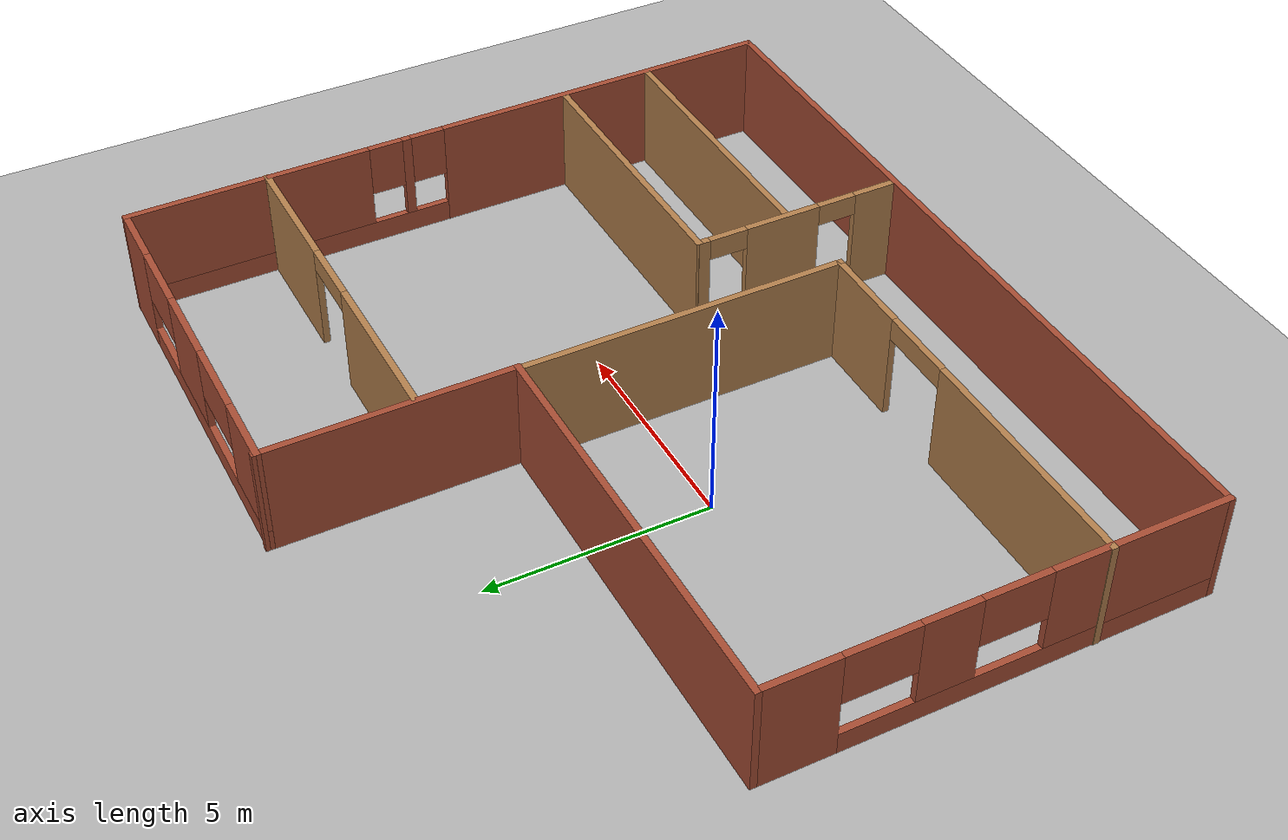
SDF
<sdf version="1.7">
 <world name="default">
  <physics name="1ms" type="ode">
   <max_step_size>0.003</max_step_size>
   <real_time_factor>1.0</real_time_factor>
   <real_time_update_rate>1000</real_time_update_rate>
  </physics>
  <plugin name="gz::sim::systems::Physics" filename="ignition-gazebo-physics-system"/>
  <plugin name="gz::sim::systems::UserCommands" filename="ignition-gazebo-user-commands-system"/>
  <plugin name="gz::sim::systems::SceneBroadcaster" filename="ignition-gazebo-scene-broadcaster-system"/>
  <plugin name="gz::sim::systems::Contact" filename="ignition-gazebo-contact-system"/>
  <light name="sun" type="directional">
   <pose>0 0 10 0 -0.5 0</pose>
   <diffuse>1 1 1 1</diffuse>
   <specular>0.1 0.1 0.1 1</specular>
   <attenuation>
    <range>1000</range>
    <constant>0.9</constant>
    <linear>0.01</linear>
    <quadratic>0.001</quadratic>
   </attenuation>
   <direction>-0.5 -0.5 -0.9</direction>
  </light>
  <gravity>0 0 -9.8</gravity>
  <magnetic_field>6e-06 2.3e-05 -4.2e-05</magnetic_field>
  <atmosphere type="adiabatic"/>
  <scene><ambient>0.4 0.4 0.4 1</ambient><background>0.3 0.7 0.9 1</background><shadows>0</shadows></scene>
  <model name="ground_plane">
   <static>true</static>
   <link name="link">
    <collision name="collision">
     <geometry><plane><normal>0 0 1</normal><size>100 100</size></plane></geometry>
    </collision>
    <visual name="visual">
     <geometry><plane><normal>0 0 1</normal><size>100 100</size></plane></geometry>
     <material>
      <ambient>0.3 0.3 0.3 1</ambient>
      <diffuse>0.7 0.7 0.7 1</diffuse>
      <specular>0.01 0.01 0.01 1</specular>
     </material>
     <plugin name="__default__" filename="__default__"/>
    </visual>
   </link>
   <plugin name="__default__" filename="__default__"/>
  </model>
  <model name="flat_2">
   <pose>2.55406 0.454253 0 0 0 -0</pose>
   <link name="Wall_11">
    <pose>-8.9 -2.76879 0 0 0 -1.5708</pose>
    <visual name="Wall_11_Visual_0">
     <pose>-4.18602 0 1.25 0 -0 0</pose>
     <geometry><box><size>1.62796 0.15 2.5</size></box></geometry>
     <material>
      <script><uri>file://media/materials/scripts/gazebo.material</uri><name>Gazebo/Bricks</name></script>
      <ambient>1 1 1 1</ambient>
     </material>
     <meta><layer>0</layer></meta>
    </visual>
    <collision name="Wall_11_Collision_0">
     <geometry><box><size>1.62796 0.15 2.5</size></box></geometry>
     <pose>-4.18602 0 1.25 0 -0 0</pose>
    </collision>
    <visual name="Wall_11_Visual_1">
     <pose>0.813982 0 0.25 0 -0 0</pose>
     <geometry><box><size>8.37204 0.15 0.5</size></box></geometry>
     <material>
      <script><uri>file://media/materials/scripts/gazebo.material</uri><name>Gazebo/Bricks</name></script>
      <ambient>1 1 1 1</ambient>
     </material>
     <meta><layer>0</layer></meta>
    </visual>
    <collision name="Wall_11_Collision_1">
     <geometry><box><size>8.37204 0.15 0.5</size></box></geometry>
     <pose>0.813982 0 0.25 0 -0 0</pose>
    </collision>
    <visual name="Wall_11_Visual_2">
     <pose>-1.1464 0 1.5 0 -0 0</pose>
     <geometry><box><size>1.26117 0.15 2</size></box></geometry>
     <material>
      <script><uri>file://media/materials/scripts/gazebo.material</uri><name>Gazebo/Bricks</name></script>
      <ambient>1 1 1 1</ambient>
     </material>
     <meta><layer>0</layer></meta>
    </visual>
    <collision name="Wall_11_Collision_2">
     <geometry><box><size>1.26117 0.15 2</size></box></geometry>
     <pose>-1.1464 0 1.5 0 -0 0</pose>
    </collision>
    <visual name="Wall_11_Visual_3">
     <pose>2.98891 0 1.5 0 -0 0</pose>
     <geometry><box><size>4.02218 0.15 2</size></box></geometry>
     <material>
      <script><uri>file://media/materials/scripts/gazebo.material</uri><name>Gazebo/Bricks</name></script>
      <ambient>1 1 1 1</ambient>
     </material>
     <meta><layer>0</layer></meta>
    </visual>
    <collision name="Wall_11_Collision_3">
     <geometry><box><size>4.02218 0.15 2</size></box></geometry>
     <pose>2.98891 0 1.5 0 -0 0</pose>
    </collision>
    <visual name="Wall_11_Visual_4">
     <pose>-2.57451 0 1.9 0 -0 0</pose>
     <geometry><box><size>1.59506 0.15 1.2</size></box></geometry>
     <material>
      <script><uri>file://media/materials/scripts/gazebo.material</uri><name>Gazebo/Bricks</name></script>
      <ambient>1 1 1 1</ambient>
     </material>
     <meta><layer>0</layer></meta>
    </visual>
    <collision name="Wall_11_Collision_4">
     <geometry><box><size>1.59506 0.15 1.2</size></box></geometry>
     <pose>-2.57451 0 1.9 0 -0 0</pose>
    </collision>
    <visual name="Wall_11_Visual_5">
     <pose>0.231004 0 1.9 0 -0 0</pose>
     <geometry><box><size>1.49363 0.15 1.2</size></box></geometry>
     <material>
      <script><uri>file://media/materials/scripts/gazebo.material</uri><name>Gazebo/Bricks</name></script>
      <ambient>1 1 1 1</ambient>
     </material>
     <meta><layer>0</layer></meta>
    </visual>
    <collision name="Wall_11_Collision_5">
     <geometry><box><size>1.49363 0.15 1.2</size></box></geometry>
     <pose>0.231004 0 1.9 0 -0 0</pose>
    </collision>
    <inertial>
     <mass>1</mass>
     <inertia><ixx>1</ixx><ixy>0</ixy><ixz>0</ixz><iyy>1</iyy><iyz>0</iyz><izz>1</izz></inertia>
    </inertial>
   </link>
   <link name="Wall_12">
    <collision name="Wall_12_Collision">
     <geometry><box><size>17.9322 0.15 2.5</size></box></geometry>
     <pose>0 0 1.25 0 -0 0</pose>
    </collision>
    <visual name="Wall_12_Visual">
     <pose>0 0 1.25 0 -0 0</pose>
     <geometry><box><size>17.9322 0.15 2.5</size></box></geometry>
     <material>
      <script><uri>file://media/materials/scripts/gazebo.material</uri><name>Gazebo/Bricks</name></script>
      <ambient>1 1 1 1</ambient>
     </material>
     <meta><layer>0</layer></meta>
    </visual>
    <pose>-0.013284 -7.72256 0 0 0 -0.003235</pose>
    <inertial>
     <mass>1</mass>
     <inertia><ixx>1</ixx><ixy>0</ixy><ixz>0</ixz><iyy>1</iyy><iyz>0</iyz><izz>1</izz></inertia>
    </inertial>
   </link>
   <link name="Wall_14">
    <pose>8.88134 -0.035336 0 0 -0 1.57557</pose>
    <visual name="Wall_14_Visual_0">
     <pose>-3.73823 0 1.25 0 -0 0</pose>
     <geometry><box><size>8.10567 0.15 2.5</size></box></geometry>
     <material>
      <script><uri>file://media/materials/scripts/gazebo.material</uri><name>Gazebo/Bricks</name></script>
      <ambient>1 1 1 1</ambient>
     </material>
     <meta><layer>0</layer></meta>
    </visual>
    <collision name="Wall_14_Collision_0">
     <geometry><box><size>8.10567 0.15 2.5</size></box></geometry>
     <pose>-3.73823 0 1.25 0 -0 0</pose>
    </collision>
    <visual name="Wall_14_Visual_1">
     <pose>4.05283 0 0.25 0 -0 0</pose>
     <geometry><box><size>7.47647 0.15 0.5</size></box></geometry>
     <material>
      <script><uri>file://media/materials/scripts/gazebo.material</uri><name>Gazebo/Bricks</name></script>
      <ambient>1 1 1 1</ambient>
     </material>
     <meta><layer>0</layer></meta>
    </visual>
    <collision name="Wall_14_Collision_1">
     <geometry><box><size>7.47647 0.15 0.5</size></box></geometry>
     <pose>4.05283 0 0.25 0 -0 0</pose>
    </collision>
    <visual name="Wall_14_Visual_2">
     <pose>1.22458 0 1.5 0 -0 0</pose>
     <geometry><box><size>0.219969 0.15 2</size></box></geometry>
     <material>
      <script><uri>file://media/materials/scripts/gazebo.material</uri><name>Gazebo/Bricks</name></script>
      <ambient>1 1 1 1</ambient>
     </material>
     <meta><layer>0</layer></meta>
    </visual>
    <collision name="Wall_14_Collision_2">
     <geometry><box><size>0.219969 0.15 2</size></box></geometry>
     <pose>1.22458 0 1.5 0 -0 0</pose>
    </collision>
    <visual name="Wall_14_Visual_3">
     <pose>4.96282 0 1.5 0 -0 0</pose>
     <geometry><box><size>5.6565 0.15 2</size></box></geometry>
     <material>
      <script><uri>file://media/materials/scripts/gazebo.material</uri><name>Gazebo/Bricks</name></script>
      <ambient>1 1 1 1</ambient>
     </material>
     <meta><layer>0</layer></meta>
    </visual>
    <collision name="Wall_14_Collision_3">
     <geometry><box><size>5.6565 0.15 2</size></box></geometry>
     <pose>4.96282 0 1.5 0 -0 0</pose>
    </collision>
    <visual name="Wall_14_Visual_4">
     <pose>0.7146 0 1.9 0 -0 0</pose>
     <geometry><box><size>0.8 0.15 1.2</size></box></geometry>
     <material>
      <script><uri>file://media/materials/scripts/gazebo.material</uri><name>Gazebo/Bricks</name></script>
      <ambient>1 1 1 1</ambient>
     </material>
     <meta><layer>0</layer></meta>
    </visual>
    <collision name="Wall_14_Collision_4">
     <geometry><box><size>0.8 0.15 1.2</size></box></geometry>
     <pose>0.7146 0 1.9 0 -0 0</pose>
    </collision>
    <visual name="Wall_14_Visual_5">
     <pose>1.73457 0 1.9 0 -0 0</pose>
     <geometry><box><size>0.8 0.15 1.2</size></box></geometry>
     <material>
      <script><uri>file://media/materials/scripts/gazebo.material</uri><name>Gazebo/Bricks</name></script>
      <ambient>1 1 1 1</ambient>
     </material>
     <meta><layer>0</layer></meta>
    </visual>
    <collision name="Wall_14_Collision_5">
     <geometry><box><size>0.8 0.15 1.2</size></box></geometry>
     <pose>1.73457 0 1.9 0 -0 0</pose>
    </collision>
    <inertial>
     <mass>1</mass>
     <inertia><ixx>1</ixx><ixy>0</ixy><ixz>0</ixz><iyy>1</iyy><iyz>0</iyz><izz>1</izz></inertia>
    </inertial>
   </link>
   <link name="Wall_15">
    <pose>4.61447 7.69576 0 0 -0 3.13798</pose>
    <visual name="Wall_15_Visual_0">
     <pose>-3.50303 0 1.25 0 -0 0</pose>
     <geometry><box><size>1.52306 0.15 2.5</size></box></geometry>
     <material>
      <script><uri>file://media/materials/scripts/gazebo.material</uri><name>Gazebo/Bricks</name></script>
      <ambient>1 1 1 1</ambient>
     </material>
     <meta><layer>0</layer></meta>
    </visual>
    <collision name="Wall_15_Collision_0">
     <geometry><box><size>1.52306 0.15 2.5</size></box></geometry>
     <pose>-3.50303 0 1.25 0 -0 0</pose>
    </collision>
    <visual name="Wall_15_Visual_1">
     <pose>0.761529 0 0.25 0 -0 0</pose>
     <geometry><box><size>7.00606 0.15 0.5</size></box></geometry>
     <material>
      <script><uri>file://media/materials/scripts/gazebo.material</uri><name>Gazebo/Bricks</name></script>
      <ambient>1 1 1 1</ambient>
     </material>
     <meta><layer>0</layer></meta>
    </visual>
    <collision name="Wall_15_Collision_1">
     <geometry><box><size>7.00606 0.15 0.5</size></box></geometry>
     <pose>0.761529 0 0.25 0 -0 0</pose>
    </collision>
    <visual name="Wall_15_Visual_2">
     <pose>-0.119116 0 1.5 0 -0 0</pose>
     <geometry><box><size>1.88034 0.15 2</size></box></geometry>
     <material>
      <script><uri>file://media/materials/scripts/gazebo.material</uri><name>Gazebo/Bricks</name></script>
      <ambient>1 1 1 1</ambient>
     </material>
     <meta><layer>0</layer></meta>
    </visual>
    <collision name="Wall_15_Collision_2">
     <geometry><box><size>1.88034 0.15 2</size></box></geometry>
     <pose>-0.119116 0 1.5 0 -0 0</pose>
    </collision>
    <visual name="Wall_15_Visual_3">
     <pose>3.44471 0 1.5 0 -0 0</pose>
     <geometry><box><size>1.6397 0.15 2</size></box></geometry>
     <material>
      <script><uri>file://media/materials/scripts/gazebo.material</uri><name>Gazebo/Bricks</name></script>
      <ambient>1 1 1 1</ambient>
     </material>
     <meta><layer>0</layer></meta>
    </visual>
    <collision name="Wall_15_Collision_3">
     <geometry><box><size>1.6397 0.15 2</size></box></geometry>
     <pose>3.44471 0 1.5 0 -0 0</pose>
    </collision>
    <visual name="Wall_15_Visual_4">
     <pose>-1.90039 0 1.9 0 -0 0</pose>
     <geometry><box><size>1.68222 0.15 1.2</size></box></geometry>
     <material>
      <script><uri>file://media/materials/scripts/gazebo.material</uri><name>Gazebo/Bricks</name></script>
      <ambient>1 1 1 1</ambient>
     </material>
     <meta><layer>0</layer></meta>
    </visual>
    <collision name="Wall_15_Collision_4">
     <geometry><box><size>1.68222 0.15 1.2</size></box></geometry>
     <pose>-1.90039 0 1.9 0 -0 0</pose>
    </collision>
    <visual name="Wall_15_Visual_5">
     <pose>1.72295 0 1.9 0 -0 0</pose>
     <geometry><box><size>1.8038 0.15 1.2</size></box></geometry>
     <material>
      <script><uri>file://media/materials/scripts/gazebo.material</uri><name>Gazebo/Bricks</name></script>
      <ambient>1 1 1 1</ambient>
     </material>
     <meta><layer>0</layer></meta>
    </visual>
    <collision name="Wall_15_Collision_5">
     <geometry><box><size>1.8038 0.15 1.2</size></box></geometry>
     <pose>1.72295 0 1.9 0 -0 0</pose>
    </collision>
    <inertial>
     <mass>1</mass>
     <inertia><ixx>1</ixx><ixy>0</ixy><ixz>0</ixz><iyy>1</iyy><iyz>0</iyz><izz>1</izz></inertia>
    </inertial>
   </link>
   <link name="Wall_16">
    <collision name="Wall_16_Collision">
     <geometry><box><size>5.57069 0.15 2.5</size></box></geometry>
     <pose>0 0 1.25 0 -0 0</pose>
    </collision>
    <visual name="Wall_16_Visual">
     <pose>0 0 1.25 0 -0 0</pose>
     <geometry><box><size>5.57069 0.15 2.5</size></box></geometry>
     <material>
      <script><uri>file://media/materials/scripts/gazebo.material</uri><name>Gazebo/Bricks</name></script>
      <ambient>1 1 1 1</ambient>
     </material>
     <meta><layer>0</layer></meta>
    </visual>
    <pose>0.437258 5.04102 0 0 0 -1.56625</pose>
    <inertial>
     <mass>1</mass>
     <inertia><ixx>1</ixx><ixy>0</ixy><ixz>0</ixz><iyy>1</iyy><iyz>0</iyz><izz>1</izz></inertia>
    </inertial>
   </link>
   <link name="Wall_18">
    <collision name="Wall_18_Collision">
     <geometry><box><size>9.5 0.15 2.5</size></box></geometry>
     <pose>0 0 1.25 0 -0 0</pose>
    </collision>
    <visual name="Wall_18_Visual">
     <pose>0 0 1.25 0 -0 0</pose>
     <geometry><box><size>9.5 0.15 2.5</size></box></geometry>
     <material>
      <script><uri>file://media/materials/scripts/gazebo.material</uri><name>Gazebo/Bricks</name></script>
      <ambient>1 1 1 1</ambient>
     </material>
     <meta><layer>0</layer></meta>
    </visual>
    <pose>-4.22543 2.29025 0 0 -0 3.14159</pose>
    <inertial>
     <mass>1</mass>
     <inertia><ixx>1</ixx><ixy>0</ixy><ixz>0</ixz><iyy>1</iyy><iyz>0</iyz><izz>1</izz></inertia>
    </inertial>
   </link>
   <link name="Wall_20">
    <pose>-4.26109 -5.07012 0 0 0 -0.0086</pose>
    <visual name="Wall_20_Visual_0">
     <pose>-1.95555 0 1.25 0 -0 0</pose>
     <geometry><box><size>5.55291 0.15 2.5</size></box></geometry>
     <material>
      <script><uri>file://media/materials/scripts/gazebo.material</uri><name>Gazebo/Wood</name></script>
      <ambient>1 1 1 1</ambient>
     </material>
     <meta><layer>0</layer></meta>
    </visual>
    <collision name="Wall_20_Collision_0">
     <geometry><box><size>5.55291 0.15 2.5</size></box></geometry>
     <pose>-1.95555 0 1.25 0 -0 0</pose>
    </collision>
    <visual name="Wall_20_Visual_1">
     <pose>3.64933 0 1.25 0 -0 0</pose>
     <geometry><box><size>2.16536 0.15 2.5</size></box></geometry>
     <material>
      <script><uri>file://media/materials/scripts/gazebo.material</uri><name>Gazebo/Wood</name></script>
      <ambient>1 1 1 1</ambient>
     </material>
     <meta><layer>0</layer></meta>
    </visual>
    <collision name="Wall_20_Collision_1">
     <geometry><box><size>2.16536 0.15 2.5</size></box></geometry>
     <pose>3.64933 0 1.25 0 -0 0</pose>
    </collision>
    <visual name="Wall_20_Visual_2">
     <pose>1.69377 0 2.25 0 -0 0</pose>
     <geometry><box><size>1.74575 0.15 0.5</size></box></geometry>
     <material>
      <script><uri>file://media/materials/scripts/gazebo.material</uri><name>Gazebo/Wood</name></script>
      <ambient>1 1 1 1</ambient>
     </material>
     <meta><layer>0</layer></meta>
    </visual>
    <collision name="Wall_20_Collision_2">
     <geometry><box><size>1.74575 0.15 0.5</size></box></geometry>
     <pose>1.69377 0 2.25 0 -0 0</pose>
    </collision>
    <inertial>
     <mass>1</mass>
     <inertia><ixx>1</ixx><ixy>0</ixy><ixz>0</ixz><iyy>1</iyy><iyz>0</iyz><izz>1</izz></inertia>
    </inertial>
   </link>
   <link name="Wall_22">
    <collision name="Wall_22_Collision">
     <geometry><box><size>7.44813 0.15 2.5</size></box></geometry>
     <pose>0 0 1.25 0 -0 0</pose>
    </collision>
    <visual name="Wall_22_Visual">
     <pose>0 0 1.25 0 -0 0</pose>
     <geometry><box><size>7.44813 0.15 2.5</size></box></geometry>
     <material>
      <script><uri>file://media/materials/scripts/gazebo.material</uri><name>Gazebo/Wood</name></script>
      <ambient>1 1 1 1</ambient>
     </material>
     <meta><layer>0</layer></meta>
    </visual>
    <pose>0.422896 -1.46114 0 0 -0 1.57444</pose>
    <inertial>
     <mass>1</mass>
     <inertia><ixx>1</ixx><ixy>0</ixy><ixz>0</ixz><iyy>1</iyy><iyz>0</iyz><izz>1</izz></inertia>
    </inertial>
   </link>
   <link name="Wall_24">
    <pose>4.69615 4.4707 0 0 -0 0</pose>
    <visual name="Wall_24_Visual_0">
     <pose>-2.34213 0 1.25 0 -0 0</pose>
     <geometry><box><size>3.81574 0.15 2.5</size></box></geometry>
     <material>
      <script><uri>file://media/materials/scripts/gazebo.material</uri><name>Gazebo/Wood</name></script>
      <ambient>1 1 1 1</ambient>
     </material>
     <meta><layer>0</layer></meta>
    </visual>
    <collision name="Wall_24_Collision_0">
     <geometry><box><size>3.81574 0.15 2.5</size></box></geometry>
     <pose>-2.34213 0 1.25 0 -0 0</pose>
    </collision>
    <visual name="Wall_24_Visual_1">
     <pose>2.69246 0 1.25 0 -0 0</pose>
     <geometry><box><size>3.11507 0.15 2.5</size></box></geometry>
     <material>
      <script><uri>file://media/materials/scripts/gazebo.material</uri><name>Gazebo/Wood</name></script>
      <ambient>1 1 1 1</ambient>
     </material>
     <meta><layer>0</layer></meta>
    </visual>
    <collision name="Wall_24_Collision_1">
     <geometry><box><size>3.11507 0.15 2.5</size></box></geometry>
     <pose>2.69246 0 1.25 0 -0 0</pose>
    </collision>
    <visual name="Wall_24_Visual_2">
     <pose>0.350335 0 2.25 0 -0 0</pose>
     <geometry><box><size>1.56919 0.15 0.5</size></box></geometry>
     <material>
      <script><uri>file://media/materials/scripts/gazebo.material</uri><name>Gazebo/Wood</name></script>
      <ambient>1 1 1 1</ambient>
     </material>
     <meta><layer>0</layer></meta>
    </visual>
    <collision name="Wall_24_Collision_2">
     <geometry><box><size>1.56919 0.15 0.5</size></box></geometry>
     <pose>0.350335 0 2.25 0 -0 0</pose>
    </collision>
    <inertial>
     <mass>1</mass>
     <inertia><ixx>1</ixx><ixy>0</ixy><ixz>0</ixz><iyy>1</iyy><iyz>0</iyz><izz>1</izz></inertia>
    </inertial>
   </link>
   <link name="Wall_26">
    <pose>2.37741 -5.28533 0 0 0 -1.5708</pose>
    <visual name="Wall_26_Visual_0">
     <pose>-2.36508 0 1.25 0 -0 0</pose>
     <geometry><box><size>0.26984 0.15 2.5</size></box></geometry>
     <material>
      <script><uri>file://media/materials/scripts/gazebo.material</uri><name>Gazebo/Wood</name></script>
      <ambient>1 1 1 1</ambient>
     </material>
     <meta><layer>0</layer></meta>
    </visual>
    <collision name="Wall_26_Collision_0">
     <geometry><box><size>0.26984 0.15 2.5</size></box></geometry>
     <pose>-2.36508 0 1.25 0 -0 0</pose>
    </collision>
    <visual name="Wall_26_Visual_1">
     <pose>-0.431785 0 1.25 0 -0 0</pose>
     <geometry><box><size>1.79331 0.15 2.5</size></box></geometry>
     <material>
      <script><uri>file://media/materials/scripts/gazebo.material</uri><name>Gazebo/Wood</name></script>
      <ambient>1 1 1 1</ambient>
     </material>
     <meta><layer>0</layer></meta>
    </visual>
    <collision name="Wall_26_Collision_1">
     <geometry><box><size>1.79331 0.15 2.5</size></box></geometry>
     <pose>-0.431785 0 1.25 0 -0 0</pose>
    </collision>
    <visual name="Wall_26_Visual_2">
     <pose>1.94001 0 1.25 0 -0 0</pose>
     <geometry><box><size>1.11999 0.15 2.5</size></box></geometry>
     <material>
      <script><uri>file://media/materials/scripts/gazebo.material</uri><name>Gazebo/Wood</name></script>
      <ambient>1 1 1 1</ambient>
     </material>
     <meta><layer>0</layer></meta>
    </visual>
    <collision name="Wall_26_Collision_2">
     <geometry><box><size>1.11999 0.15 2.5</size></box></geometry>
     <pose>1.94001 0 1.25 0 -0 0</pose>
    </collision>
    <visual name="Wall_26_Visual_3">
     <pose>-1.7793 0 2.25 0 -0 0</pose>
     <geometry><box><size>0.901719 0.15 0.5</size></box></geometry>
     <material>
      <script><uri>file://media/materials/scripts/gazebo.material</uri><name>Gazebo/Wood</name></script>
      <ambient>1 1 1 1</ambient>
     </material>
     <meta><layer>0</layer></meta>
    </visual>
    <collision name="Wall_26_Collision_3">
     <geometry><box><size>0.901719 0.15 0.5</size></box></geometry>
     <pose>-1.7793 0 2.25 0 -0 0</pose>
    </collision>
    <visual name="Wall_26_Visual_4">
     <pose>0.922442 0 2.25 0 -0 0</pose>
     <geometry><box><size>0.915144 0.15 0.5</size></box></geometry>
     <material>
      <script><uri>file://media/materials/scripts/gazebo.material</uri><name>Gazebo/Wood</name></script>
      <ambient>1 1 1 1</ambient>
     </material>
     <meta><layer>0</layer></meta>
    </visual>
    <collision name="Wall_26_Collision_4">
     <geometry><box><size>0.915144 0.15 0.5</size></box></geometry>
     <pose>0.922442 0 2.25 0 -0 0</pose>
    </collision>
    <inertial>
     <mass>1</mass>
     <inertia><ixx>1</ixx><ixy>0</ixy><ixz>0</ixz><iyy>1</iyy><iyz>0</iyz><izz>1</izz></inertia>
    </inertial>
   </link>
   <link name="Wall_28">
    <collision name="Wall_28_Collision">
     <geometry><box><size>6.5 0.15 2.5</size></box></geometry>
     <pose>0 0 1.25 0 -0 0</pose>
    </collision>
    <visual name="Wall_28_Visual">
     <pose>0 0 1.25 0 -0 0</pose>
     <geometry><box><size>6.5 0.15 2.5</size></box></geometry>
     <material>
      <script><uri>file://media/materials/scripts/gazebo.material</uri><name>Gazebo/Wood</name></script>
      <ambient>1 1 1 1</ambient>
     </material>
     <meta><layer>0</layer></meta>
    </visual>
    <pose>5.56371 -2.80486 0 0 -0 0</pose>
    <inertial>
     <mass>1</mass>
     <inertia><ixx>1</ixx><ixy>0</ixy><ixz>0</ixz><iyy>1</iyy><iyz>0</iyz><izz>1</izz></inertia>
    </inertial>
   </link>
   <link name="Wall_30">
    <collision name="Wall_30_Collision">
     <geometry><box><size>6.5 0.15 2.5</size></box></geometry>
     <pose>0 0 1.25 0 -0 0</pose>
    </collision>
    <visual name="Wall_30_Visual">
     <pose>0 0 1.25 0 -0 0</pose>
     <geometry><box><size>6.5 0.15 2.5</size></box></geometry>
     <material>
      <script><uri>file://media/materials/scripts/gazebo.material</uri><name>Gazebo/Wood</name></script>
      <ambient>1 1 1 1</ambient>
     </material>
     <meta><layer>0</layer></meta>
    </visual>
    <pose>5.61814 -4.97174 0 0 -0 0</pose>
    <inertial>
     <mass>1</mass>
     <inertia><ixx>1</ixx><ixy>0</ixy><ixz>0</ixz><iyy>1</iyy><iyz>0</iyz><izz>1</izz></inertia>
    </inertial>
   </link>
   <static>true</static>
  </model>
  <model name="Bookshelf">
   <static>true</static>
   <link name="link">
    <inertial>
     <mass>1</mass>
     <inertia><ixx>1</ixx><ixy>0</ixy><ixz>0</ixz><iyy>1</iyy><iyz>0</iyz><izz>1</izz></inertia>
    </inertial>
    <collision name="back">
     <pose>0 0.005 0.6 0 0 0</pose>
     <geometry><box><size>0.9 0.01 1.2</size></box></geometry>
    </collision>
    <visual name="visual1">
     <pose>0 0.005 0.6 0 0 0</pose>
     <geometry><box><size>0.9 0.01 1.2</size></box></geometry>
     <material>
      <diffuse>1 1 1 1</diffuse>
      <script><uri>file://media/materials/scripts/gazebo.material</uri><name>Gazebo/Wood</name></script>
      <pbr>
       <metal>
        <albedo_map>https://fuel.gazebosim.org/1.0/openrobotics/models/bookshelf/4/files/bookshelf_diffuse.jpg</albedo_map>
       </metal>
      </pbr>
     </material>
    </visual>
    <collision name="left_side">
     <pose>0.45 -0.195 0.6 0 0 0</pose>
     <geometry><box><size>0.02 0.4 1.2</size></box></geometry>
    </collision>
    <visual name="visual2">
     <pose>0.45 -0.195 0.6 0 0 0</pose>
     <geometry><box><size>0.02 0.4 1.2</size></box></geometry>
     <material>
      <diffuse>1 1 1 1</diffuse>
      <script><uri>file://media/materials/scripts/gazebo.material</uri><name>Gazebo/Wood</name></script>
      <pbr>
       <metal>
        <albedo_map>https://fuel.gazebosim.org/1.0/openrobotics/models/bookshelf/4/files/bookshelf_diffuse.jpg</albedo_map>
       </metal>
      </pbr>
     </material>
    </visual>
    <collision name="right_side">
     <pose>-0.45 -0.195 0.6 0 0 0</pose>
     <geometry><box><size>0.02 0.4 1.2</size></box></geometry>
    </collision>
    <visual name="visual3">
     <pose>-0.45 -0.195 0.6 0 0 0</pose>
     <geometry><box><size>0.02 0.4 1.2</size></box></geometry>
     <material>
      <diffuse>1 1 1 1</diffuse>
      <script><uri>file://media/materials/scripts/gazebo.material</uri><name>Gazebo/Wood</name></script>
      <pbr>
       <metal>
        <albedo_map>https://fuel.gazebosim.org/1.0/openrobotics/models/bookshelf/4/files/bookshelf_diffuse.jpg</albedo_map>
       </metal>
      </pbr>
     </material>
    </visual>
    <collision name="bottom">
     <pose>0 -0.195 0.03 0 0 0</pose>
     <geometry><box><size>0.88 0.4 0.06</size></box></geometry>
    </collision>
    <visual name="visual4">
     <pose>0 -0.195 0.03 0 0 0</pose>
     <geometry><box><size>0.88 0.4 0.06</size></box></geometry>
     <material>
      <diffuse>1 1 1 1</diffuse>
      <script><uri>file://media/materials/scripts/gazebo.material</uri><name>Gazebo/Wood</name></script>
      <pbr>
       <metal>
        <albedo_map>https://fuel.gazebosim.org/1.0/openrobotics/models/bookshelf/4/files/bookshelf_diffuse.jpg</albedo_map>
       </metal>
      </pbr>
     </material>
    </visual>
    <collision name="top">
     <pose>0 -0.195 1.19 0 0 0</pose>
     <geometry><box><size>0.88 0.4 0.02</size></box></geometry>
    </collision>
    <visual name="visual5">
     <pose>0 -0.195 1.19 0 0 0</pose>
     <geometry><box><size>0.88 0.4 0.02</size></box></geometry>
     <material>
      <diffuse>1 1 1 1</diffuse>
      <script><uri>file://media/materials/scripts/gazebo.material</uri><name>Gazebo/Wood</name></script>
      <pbr>
       <metal>
        <albedo_map>https://fuel.gazebosim.org/1.0/openrobotics/models/bookshelf/4/files/bookshelf_diffuse.jpg</albedo_map>
       </metal>
      </pbr>
     </material>
    </visual>
    <collision name="low_shelf">
     <pose>0 -0.195 0.43 0 0 0</pose>
     <geometry><box><size>0.88 0.4 0.02</size></box></geometry>
    </collision>
    <visual name="visual6">
     <pose>0 -0.195 0.43 0 0 0</pose>
     <geometry><box><size>0.88 0.4 0.02</size></box></geometry>
     <material>
      <diffuse>1 1 1 1</diffuse>
      <script><uri>file://media/materials/scripts/gazebo.material</uri><name>Gazebo/Wood</name></script>
      <pbr>
       <metal>
        <albedo_map>https://fuel.gazebosim.org/1.0/openrobotics/models/bookshelf/4/files/bookshelf_diffuse.jpg</albedo_map>
       </metal>
      </pbr>
     </material>
    </visual>
    <collision name="high_shelf">
     <pose>0 -0.195 0.8 0 0 0</pose>
     <geometry><box><size>0.88 0.4 0.02</size></box></geometry>
    </collision>
    <visual name="visual7">
     <pose>0 -0.195 0.8 0 0 0</pose>
     <geometry><box><size>0.88 0.4 0.02</size></box></geometry>
     <material>
      <diffuse>1 1 1 1</diffuse>
      <script><uri>file://media/materials/scripts/gazebo.material</uri><name>Gazebo/Wood</name></script>
      <pbr>
       <metal>
        <albedo_map>https://fuel.gazebosim.org/1.0/openrobotics/models/bookshelf/4/files/bookshelf_diffuse.jpg</albedo_map>
       </metal>
      </pbr>
     </material>
    </visual>
   </link>
   <pose>10.1657 -2.31767 0 0 -0 0</pose>
  </model>
  <model name="Bookshelf_0">
   <static>true</static>
   <link name="link">
    <inertial>
     <mass>1</mass>
     <inertia><ixx>1</ixx><ixy>0</ixy><ixz>0</ixz><iyy>1</iyy><iyz>0</iyz><izz>1</izz></inertia>
    </inertial>
    <collision name="back">
     <pose>0 0.005 0.6 0 0 0</pose>
     <geometry><box><size>0.9 0.01 1.2</size></box></geometry>
    </collision>
    <visual name="visual1">
     <pose>0 0.005 0.6 0 0 0</pose>
     <geometry><box><size>0.9 0.01 1.2</size></box></geometry>
     <material>
      <diffuse>1 1 1 1</diffuse>
      <script><uri>file://media/materials/scripts/gazebo.material</uri><name>Gazebo/Wood</name></script>
      <pbr>
       <metal>
        <albedo_map>https://fuel.gazebosim.org/1.0/openrobotics/models/bookshelf/4/files/bookshelf_diffuse.jpg</albedo_map>
       </metal>
      </pbr>
     </material>
    </visual>
    <collision name="left_side">
     <pose>0.45 -0.195 0.6 0 0 0</pose>
     <geometry><box><size>0.02 0.4 1.2</size></box></geometry>
    </collision>
    <visual name="visual2">
     <pose>0.45 -0.195 0.6 0 0 0</pose>
     <geometry><box><size>0.02 0.4 1.2</size></box></geometry>
     <material>
      <diffuse>1 1 1 1</diffuse>
      <script><uri>file://media/materials/scripts/gazebo.material</uri><name>Gazebo/Wood</name></script>
      <pbr>
       <metal>
        <albedo_map>https://fuel.gazebosim.org/1.0/openrobotics/models/bookshelf/4/files/bookshelf_diffuse.jpg</albedo_map>
       </metal>
      </pbr>
     </material>
    </visual>
    <collision name="right_side">
     <pose>-0.45 -0.195 0.6 0 0 0</pose>
     <geometry><box><size>0.02 0.4 1.2</size></box></geometry>
    </collision>
    <visual name="visual3">
     <pose>-0.45 -0.195 0.6 0 0 0</pose>
     <geometry><box><size>0.02 0.4 1.2</size></box></geometry>
     <material>
      <diffuse>1 1 1 1</diffuse>
      <script><uri>file://media/materials/scripts/gazebo.material</uri><name>Gazebo/Wood</name></script>
      <pbr>
       <metal>
        <albedo_map>https://fuel.gazebosim.org/1.0/openrobotics/models/bookshelf/4/files/bookshelf_diffuse.jpg</albedo_map>
       </metal>
      </pbr>
     </material>
    </visual>
    <collision name="bottom">
     <pose>0 -0.195 0.03 0 0 0</pose>
     <geometry><box><size>0.88 0.4 0.06</size></box></geometry>
    </collision>
    <visual name="visual4">
     <pose>0 -0.195 0.03 0 0 0</pose>
     <geometry><box><size>0.88 0.4 0.06</size></box></geometry>
     <material>
      <diffuse>1 1 1 1</diffuse>
      <script><uri>file://media/materials/scripts/gazebo.material</uri><name>Gazebo/Wood</name></script>
      <pbr>
       <metal>
        <albedo_map>https://fuel.gazebosim.org/1.0/openrobotics/models/bookshelf/4/files/bookshelf_diffuse.jpg</albedo_map>
       </metal>
      </pbr>
     </material>
    </visual>
    <collision name="top">
     <pose>0 -0.195 1.19 0 0 0</pose>
     <geometry><box><size>0.88 0.4 0.02</size></box></geometry>
    </collision>
    <visual name="visual5">
     <pose>0 -0.195 1.19 0 0 0</pose>
     <geometry><box><size>0.88 0.4 0.02</size></box></geometry>
     <material>
      <diffuse>1 1 1 1</diffuse>
      <script><uri>file://media/materials/scripts/gazebo.material</uri><name>Gazebo/Wood</name></script>
      <pbr>
       <metal>
        <albedo_map>https://fuel.gazebosim.org/1.0/openrobotics/models/bookshelf/4/files/bookshelf_diffuse.jpg</albedo_map>
       </metal>
      </pbr>
     </material>
    </visual>
    <collision name="low_shelf">
     <pose>0 -0.195 0.43 0 0 0</pose>
     <geometry><box><size>0.88 0.4 0.02</size></box></geometry>
    </collision>
    <visual name="visual6">
     <pose>0 -0.195 0.43 0 0 0</pose>
     <geometry><box><size>0.88 0.4 0.02</size></box></geometry>
     <material>
      <diffuse>1 1 1 1</diffuse>
      <script><uri>file://media/materials/scripts/gazebo.material</uri><name>Gazebo/Wood</name></script>
      <pbr>
       <metal>
        <albedo_map>https://fuel.gazebosim.org/1.0/openrobotics/models/bookshelf/4/files/bookshelf_diffuse.jpg</albedo_map>
       </metal>
      </pbr>
     </material>
    </visual>
    <collision name="high_shelf">
     <pose>0 -0.195 0.8 0 0 0</pose>
     <geometry><box><size>0.88 0.4 0.02</size></box></geometry>
    </collision>
    <visual name="visual7">
     <pose>0 -0.195 0.8 0 0 0</pose>
     <geometry><box><size>0.88 0.4 0.02</size></box></geometry>
     <material>
      <diffuse>1 1 1 1</diffuse>
      <script><uri>file://media/materials/scripts/gazebo.material</uri><name>Gazebo/Wood</name></script>
      <pbr>
       <metal>
        <albedo_map>https://fuel.gazebosim.org/1.0/openrobotics/models/bookshelf/4/files/bookshelf_diffuse.jpg</albedo_map>
       </metal>
      </pbr>
     </material>
    </visual>
   </link>
   <pose>9.26409 -2.3181 0 0 -0 0</pose>
  </model>
  <model name="Bookshelf_1">
   <static>true</static>
   <link name="link">
    <inertial>
     <mass>1</mass>
     <inertia><ixx>1</ixx><ixy>0</ixy><ixz>0</ixz><iyy>1</iyy><iyz>0</iyz><izz>1</izz></inertia>
    </inertial>
    <collision name="back">
     <pose>0 0.005 0.6 0 0 0</pose>
     <geometry><box><size>0.9 0.01 1.2</size></box></geometry>
    </collision>
    <visual name="visual1">
     <pose>0 0.005 0.6 0 0 0</pose>
     <geometry><box><size>0.9 0.01 1.2</size></box></geometry>
     <material>
      <diffuse>1 1 1 1</diffuse>
      <script><uri>file://media/materials/scripts/gazebo.material</uri><name>Gazebo/Wood</name></script>
      <pbr>
       <metal>
        <albedo_map>https://fuel.gazebosim.org/1.0/openrobotics/models/bookshelf/4/files/bookshelf_diffuse.jpg</albedo_map>
       </metal>
      </pbr>
     </material>
    </visual>
    <collision name="left_side">
     <pose>0.45 -0.195 0.6 0 0 0</pose>
     <geometry><box><size>0.02 0.4 1.2</size></box></geometry>
    </collision>
    <visual name="visual2">
     <pose>0.45 -0.195 0.6 0 0 0</pose>
     <geometry><box><size>0.02 0.4 1.2</size></box></geometry>
     <material>
      <diffuse>1 1 1 1</diffuse>
      <script><uri>file://media/materials/scripts/gazebo.material</uri><name>Gazebo/Wood</name></script>
      <pbr>
       <metal>
        <albedo_map>https://fuel.gazebosim.org/1.0/openrobotics/models/bookshelf/4/files/bookshelf_diffuse.jpg</albedo_map>
       </metal>
      </pbr>
     </material>
    </visual>
    <collision name="right_side">
     <pose>-0.45 -0.195 0.6 0 0 0</pose>
     <geometry><box><size>0.02 0.4 1.2</size></box></geometry>
    </collision>
    <visual name="visual3">
     <pose>-0.45 -0.195 0.6 0 0 0</pose>
     <geometry><box><size>0.02 0.4 1.2</size></box></geometry>
     <material>
      <diffuse>1 1 1 1</diffuse>
      <script><uri>file://media/materials/scripts/gazebo.material</uri><name>Gazebo/Wood</name></script>
      <pbr>
       <metal>
        <albedo_map>https://fuel.gazebosim.org/1.0/openrobotics/models/bookshelf/4/files/bookshelf_diffuse.jpg</albedo_map>
       </metal>
      </pbr>
     </material>
    </visual>
    <collision name="bottom">
     <pose>0 -0.195 0.03 0 0 0</pose>
     <geometry><box><size>0.88 0.4 0.06</size></box></geometry>
    </collision>
    <visual name="visual4">
     <pose>0 -0.195 0.03 0 0 0</pose>
     <geometry><box><size>0.88 0.4 0.06</size></box></geometry>
     <material>
      <diffuse>1 1 1 1</diffuse>
      <script><uri>file://media/materials/scripts/gazebo.material</uri><name>Gazebo/Wood</name></script>
      <pbr>
       <metal>
        <albedo_map>https://fuel.gazebosim.org/1.0/openrobotics/models/bookshelf/4/files/bookshelf_diffuse.jpg</albedo_map>
       </metal>
      </pbr>
     </material>
    </visual>
    <collision name="top">
     <pose>0 -0.195 1.19 0 0 0</pose>
     <geometry><box><size>0.88 0.4 0.02</size></box></geometry>
    </collision>
    <visual name="visual5">
     <pose>0 -0.195 1.19 0 0 0</pose>
     <geometry><box><size>0.88 0.4 0.02</size></box></geometry>
     <material>
      <diffuse>1 1 1 1</diffuse>
      <script><uri>file://media/materials/scripts/gazebo.material</uri><name>Gazebo/Wood</name></script>
      <pbr>
       <metal>
        <albedo_map>https://fuel.gazebosim.org/1.0/openrobotics/models/bookshelf/4/files/bookshelf_diffuse.jpg</albedo_map>
       </metal>
      </pbr>
     </material>
    </visual>
    <collision name="low_shelf">
     <pose>0 -0.195 0.43 0 0 0</pose>
     <geometry><box><size>0.88 0.4 0.02</size></box></geometry>
    </collision>
    <visual name="visual6">
     <pose>0 -0.195 0.43 0 0 0</pose>
     <geometry><box><size>0.88 0.4 0.02</size></box></geometry>
     <material>
      <diffuse>1 1 1 1</diffuse>
      <script><uri>file://media/materials/scripts/gazebo.material</uri><name>Gazebo/Wood</name></script>
      <pbr>
       <metal>
        <albedo_map>https://fuel.gazebosim.org/1.0/openrobotics/models/bookshelf/4/files/bookshelf_diffuse.jpg</albedo_map>
       </metal>
      </pbr>
     </material>
    </visual>
    <collision name="high_shelf">
     <pose>0 -0.195 0.8 0 0 0</pose>
     <geometry><box><size>0.88 0.4 0.02</size></box></geometry>
    </collision>
    <visual name="visual7">
     <pose>0 -0.195 0.8 0 0 0</pose>
     <geometry><box><size>0.88 0.4 0.02</size></box></geometry>
     <material>
      <diffuse>1 1 1 1</diffuse>
      <script><uri>file://media/materials/scripts/gazebo.material</uri><name>Gazebo/Wood</name></script>
      <pbr>
       <metal>
        <albedo_map>https://fuel.gazebosim.org/1.0/openrobotics/models/bookshelf/4/files/bookshelf_diffuse.jpg</albedo_map>
       </metal>
      </pbr>
     </material>
    </visual>
   </link>
   <pose>8.33704 -2.31955 0 0 -0 0</pose>
  </model>
 </world>
</sdf>
